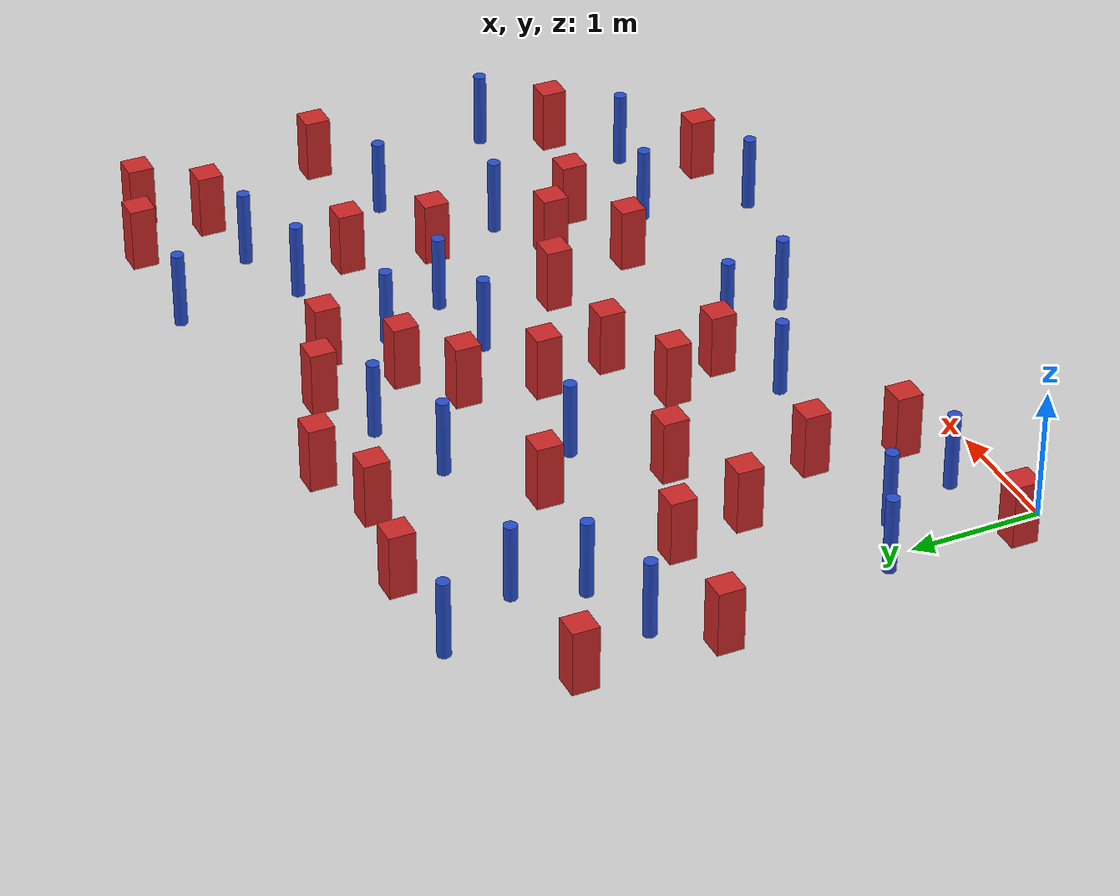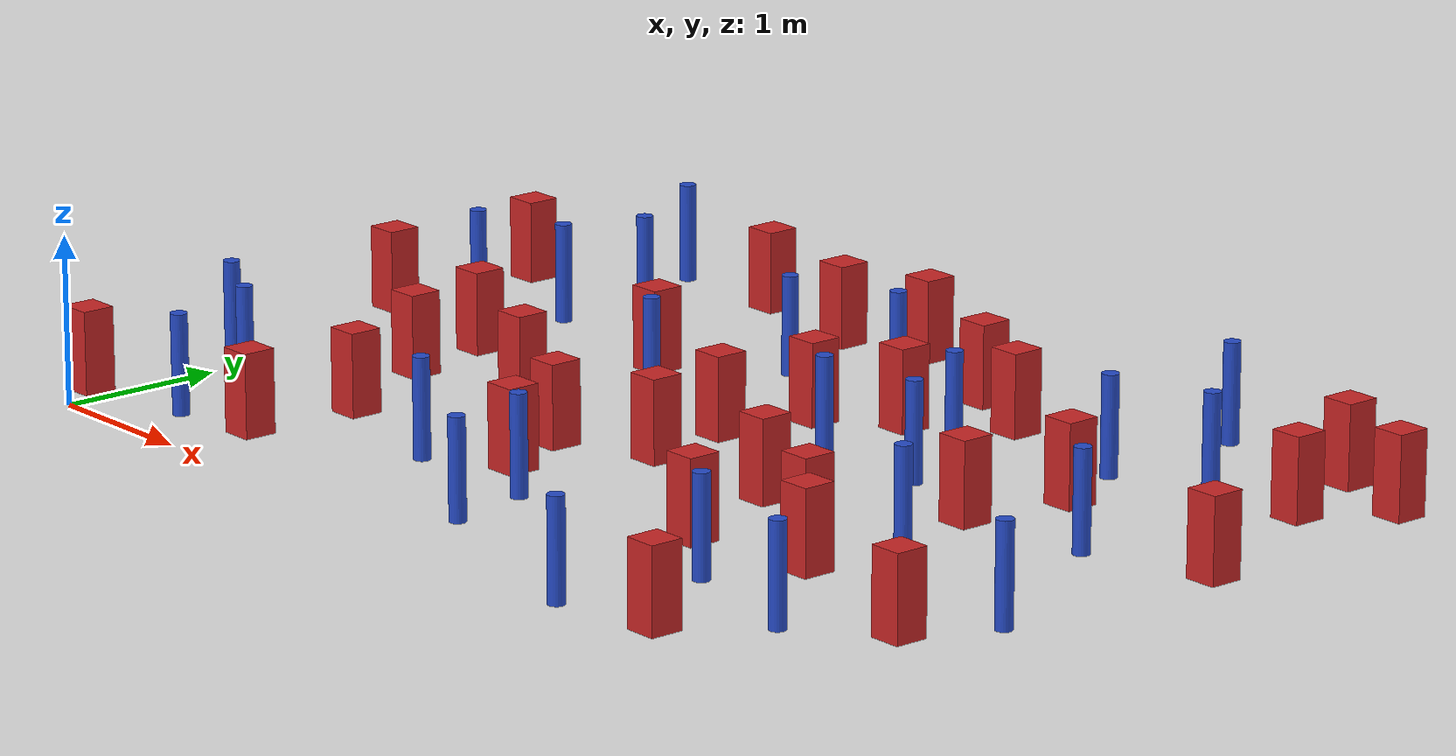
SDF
<sdf version="1.6">
 <model name="dense_40">
  <model name="square_post_obstacle8">
   <static>true</static>
   <pose>4.57625986904 1.62111247011 1.91545236811e-07 -7.35059704564e-06 1.12565212e-07 2.39332434364e-05</pose>
   <link name="link">
    <pose>0 0 0.25 0 -0 0</pose>
    <inertial>
     <mass>100</mass>
     <inertia>
      <ixx>0.166667</ixx>
      <ixy>0</ixy>
      <ixz>0</ixz>
      <iyy>0.166667</iyy>
      <iyz>0</iyz>
      <izz>0.166667</izz>
     </inertia>
    </inertial>
    <collision name="collision"><geometry><box><size>.2 .2 .5</size></box></geometry></collision>
    <visual name="visual">
     <geometry><box><size>.2 .2 .5</size></box></geometry>
     <material>
      <script><name>Gazebo/Red</name><uri>file://media/materials/scripts/gazebo.material</uri></script>
     </material>
    </visual>
   </link>
  </model>
  <model name="pole_obstacle11">
   <static>true</static>
   <pose>0.478664716121 3.2279638088 7.38925637345e-09 -8.471706928e-08 1.24976765089e-08 -1.74513093016e-07</pose>
   <link name="link">
    <pose>0 0 0.3 0 -0 0</pose>
    <inertial>
     <mass>1</mass>
     <inertia><ixx>0.145833</ixx><ixy>0</ixy><ixz>0</ixz><iyy>0.145833</iyy><iyz>0</iyz><izz>0.125</izz></inertia>
    </inertial>
    <collision name="collision">
     <geometry><cylinder><radius>0.05</radius><length>.6</length></cylinder></geometry>
    </collision>
    <visual name="visual">
     <geometry><cylinder><radius>0.05</radius><length>.6</length></cylinder></geometry>
     <material>
      <script><name>Gazebo/Blue</name><uri>file://media/materials/scripts/gazebo.material</uri></script>
     </material>
    </visual>
   </link>
  </model>
  <model name="square_post_obstacle22">
   <static>true</static>
   <pose>1.09951988133 0.476390049716 1.91545236811e-07 -7.35059704564e-06 1.12565212e-07 2.39332434364e-05</pose>
   <link name="link">
    <pose>0 0 0.25 0 -0 0</pose>
    <inertial>
     <mass>100</mass>
     <inertia>
      <ixx>0.166667</ixx>
      <ixy>0</ixy>
      <ixz>0</ixz>
      <iyy>0.166667</iyy>
      <iyz>0</iyz>
      <izz>0.166667</izz>
     </inertia>
    </inertial>
    <collision name="collision"><geometry><box><size>.2 .2 .5</size></box></geometry></collision>
    <visual name="visual">
     <geometry><box><size>.2 .2 .5</size></box></geometry>
     <material>
      <script><name>Gazebo/Red</name><uri>file://media/materials/scripts/gazebo.material</uri></script>
     </material>
    </visual>
   </link>
  </model>
  <model name="pole_obstacle14">
   <static>true</static>
   <pose>2.02225817843 2.63889635493 7.38925637345e-09 -8.47170692797e-08 1.24976764891e-08 -1.74513093027e-07</pose>
   <link name="link">
    <pose>0 0 0.3 0 -0 0</pose>
    <inertial>
     <mass>1</mass>
     <inertia><ixx>0.145833</ixx><ixy>0</ixy><ixz>0</ixz><iyy>0.145833</iyy><iyz>0</iyz><izz>0.125</izz></inertia>
    </inertial>
    <collision name="collision">
     <geometry><cylinder><radius>0.05</radius><length>.6</length></cylinder></geometry>
    </collision>
    <visual name="visual">
     <geometry><cylinder><radius>0.05</radius><length>.6</length></cylinder></geometry>
     <material>
      <script><name>Gazebo/Blue</name><uri>file://media/materials/scripts/gazebo.material</uri></script>
     </material>
    </visual>
   </link>
  </model>
  <model name="square_post_obstacle23">
   <static>true</static>
   <pose>4.18238607842 1.15388390437 1.91545236811e-07 -7.35059704564e-06 1.12565212e-07 2.39332434364e-05</pose>
   <link name="link">
    <pose>0 0 0.25 0 -0 0</pose>
    <inertial>
     <mass>100</mass>
     <inertia>
      <ixx>0.166667</ixx>
      <ixy>0</ixy>
      <ixz>0</ixz>
      <iyy>0.166667</iyy>
      <iyz>0</iyz>
      <izz>0.166667</izz>
     </inertia>
    </inertial>
    <collision name="collision"><geometry><box><size>.2 .2 .5</size></box></geometry></collision>
    <visual name="visual">
     <geometry><box><size>.2 .2 .5</size></box></geometry>
     <material>
      <script><name>Gazebo/Red</name><uri>file://media/materials/scripts/gazebo.material</uri></script>
     </material>
    </visual>
   </link>
  </model>
  <model name="pole_obstacle19">
   <static>true</static>
   <pose>2.18692887537 3.53944393992 7.38925637345e-09 -8.47170692798e-08 1.24976764939e-08 -1.74513093025e-07</pose>
   <link name="link">
    <pose>0 0 0.3 0 -0 0</pose>
    <inertial>
     <mass>1</mass>
     <inertia><ixx>0.145833</ixx><ixy>0</ixy><ixz>0</ixz><iyy>0.145833</iyy><iyz>0</iyz><izz>0.125</izz></inertia>
    </inertial>
    <collision name="collision">
     <geometry><cylinder><radius>0.05</radius><length>.6</length></cylinder></geometry>
    </collision>
    <visual name="visual">
     <geometry><cylinder><radius>0.05</radius><length>.6</length></cylinder></geometry>
     <material>
      <script><name>Gazebo/Blue</name><uri>file://media/materials/scripts/gazebo.material</uri></script>
     </material>
    </visual>
   </link>
  </model>
  <model name="pole_obstacle22">
   <static>true</static>
   <pose>4.7871799896 4.55580979346 7.38925637345e-09 -8.47170692796e-08 1.24976764786e-08 -1.74513093032e-07</pose>
   <link name="link">
    <pose>0 0 0.3 0 -0 0</pose>
    <inertial>
     <mass>1</mass>
     <inertia><ixx>0.145833</ixx><ixy>0</ixy><ixz>0</ixz><iyy>0.145833</iyy><iyz>0</iyz><izz>0.125</izz></inertia>
    </inertial>
    <collision name="collision">
     <geometry><cylinder><radius>0.05</radius><length>.6</length></cylinder></geometry>
    </collision>
    <visual name="visual">
     <geometry><cylinder><radius>0.05</radius><length>.6</length></cylinder></geometry>
     <material>
      <script><name>Gazebo/Blue</name><uri>file://media/materials/scripts/gazebo.material</uri></script>
     </material>
    </visual>
   </link>
  </model>
  <model name="pole_obstacle29">
   <static>true</static>
   <pose>4.54024770838 -0.0614393843138 7.38925637345e-09 -8.47170692799e-08 1.24976765036e-08 -1.7451309302e-07</pose>
   <link name="link">
    <pose>0 0 0.3 0 -0 0</pose>
    <inertial>
     <mass>1</mass>
     <inertia><ixx>0.145833</ixx><ixy>0</ixy><ixz>0</ixz><iyy>0.145833</iyy><iyz>0</iyz><izz>0.125</izz></inertia>
    </inertial>
    <collision name="collision">
     <geometry><cylinder><radius>0.05</radius><length>.6</length></cylinder></geometry>
    </collision>
    <visual name="visual">
     <geometry><cylinder><radius>0.05</radius><length>.6</length></cylinder></geometry>
     <material>
      <script><name>Gazebo/Blue</name><uri>file://media/materials/scripts/gazebo.material</uri></script>
     </material>
    </visual>
   </link>
  </model>
  <model name="pole_obstacle33">
   <static>true</static>
   <pose>0.650099446208 3.71073841236 7.38925637345e-09 -8.47170692799e-08 1.2497676509e-08 -1.74513093016e-07</pose>
   <link name="link">
    <pose>0 0 0.3 0 -0 0</pose>
    <inertial>
     <mass>1</mass>
     <inertia><ixx>0.145833</ixx><ixy>0</ixy><ixz>0</ixz><iyy>0.145833</iyy><iyz>0</iyz><izz>0.125</izz></inertia>
    </inertial>
    <collision name="collision">
     <geometry><cylinder><radius>0.05</radius><length>.6</length></cylinder></geometry>
    </collision>
    <visual name="visual">
     <geometry><cylinder><radius>0.05</radius><length>.6</length></cylinder></geometry>
     <material>
      <script><name>Gazebo/Blue</name><uri>file://media/materials/scripts/gazebo.material</uri></script>
     </material>
    </visual>
   </link>
  </model>
  <model name="square_post_obstacle37">
   <static>true</static>
   <pose>2.94550597644 1.91577347089 1.91545236811e-07 -7.35059704564e-06 1.12565212e-07 2.39332434364e-05</pose>
   <link name="link">
    <pose>0 0 0.25 0 -0 0</pose>
    <inertial>
     <mass>100</mass>
     <inertia>
      <ixx>0.166667</ixx>
      <ixy>0</ixy>
      <ixz>0</ixz>
      <iyy>0.166667</iyy>
      <iyz>0</iyz>
      <izz>0.166667</izz>
     </inertia>
    </inertial>
    <collision name="collision"><geometry><box><size>.2 .2 .5</size></box></geometry></collision>
    <visual name="visual">
     <geometry><box><size>.2 .2 .5</size></box></geometry>
     <material>
      <script><name>Gazebo/Red</name><uri>file://media/materials/scripts/gazebo.material</uri></script>
     </material>
    </visual>
   </link>
  </model>
  <model name="square_post_obstacle40">
   <static>true</static>
   <pose>1.16392120445 1.17354132471 1.91545236811e-07 -7.35059704564e-06 1.12565212e-07 2.39332434364e-05</pose>
   <link name="link">
    <pose>0 0 0.25 0 -0 0</pose>
    <inertial>
     <mass>100</mass>
     <inertia>
      <ixx>0.166667</ixx>
      <ixy>0</ixy>
      <ixz>0</ixz>
      <iyy>0.166667</iyy>
      <iyz>0</iyz>
      <izz>0.166667</izz>
     </inertia>
    </inertial>
    <collision name="collision"><geometry><box><size>.2 .2 .5</size></box></geometry></collision>
    <visual name="visual">
     <geometry><box><size>.2 .2 .5</size></box></geometry>
     <material>
      <script><name>Gazebo/Red</name><uri>file://media/materials/scripts/gazebo.material</uri></script>
     </material>
    </visual>
   </link>
  </model>
  <model name="square_post_obstacle41">
   <static>true</static>
   <pose>2.58108066992 1.194146074 1.91545236811e-07 -7.35059704564e-06 1.12565212e-07 2.39332434364e-05</pose>
   <link name="link">
    <pose>0 0 0.25 0 -0 0</pose>
    <inertial>
     <mass>100</mass>
     <inertia>
      <ixx>0.166667</ixx>
      <ixy>0</ixy>
      <ixz>0</ixz>
      <iyy>0.166667</iyy>
      <iyz>0</iyz>
      <izz>0.166667</izz>
     </inertia>
    </inertial>
    <collision name="collision"><geometry><box><size>.2 .2 .5</size></box></geometry></collision>
    <visual name="visual">
     <geometry><box><size>.2 .2 .5</size></box></geometry>
     <material>
      <script><name>Gazebo/Red</name><uri>file://media/materials/scripts/gazebo.material</uri></script>
     </material>
    </visual>
   </link>
  </model>
  <model name="square_post_obstacle43">
   <static>true</static>
   <pose>3.32716525385 4.02108744981 1.91545236811e-07 -7.35059704564e-06 1.12565212e-07 2.39332434364e-05</pose>
   <link name="link">
    <pose>0 0 0.25 0 -0 0</pose>
    <inertial>
     <mass>100</mass>
     <inertia>
      <ixx>0.166667</ixx>
      <ixy>0</ixy>
      <ixz>0</ixz>
      <iyy>0.166667</iyy>
      <iyz>0</iyz>
      <izz>0.166667</izz>
     </inertia>
    </inertial>
    <collision name="collision"><geometry><box><size>.2 .2 .5</size></box></geometry></collision>
    <visual name="visual">
     <geometry><box><size>.2 .2 .5</size></box></geometry>
     <material>
      <script><name>Gazebo/Red</name><uri>file://media/materials/scripts/gazebo.material</uri></script>
     </material>
    </visual>
   </link>
  </model>
  <model name="square_post_obstacle56">
   <static>true</static>
   <pose>0.630769645936 2.4777197629 1.91545236811e-07 -7.35059704564e-06 1.12565212e-07 2.39332434364e-05</pose>
   <link name="link">
    <pose>0 0 0.25 0 -0 0</pose>
    <inertial>
     <mass>100</mass>
     <inertia>
      <ixx>0.166667</ixx>
      <ixy>0</ixy>
      <ixz>0</ixz>
      <iyy>0.166667</iyy>
      <iyz>0</iyz>
      <izz>0.166667</izz>
     </inertia>
    </inertial>
    <collision name="collision"><geometry><box><size>.2 .2 .5</size></box></geometry></collision>
    <visual name="visual">
     <geometry><box><size>.2 .2 .5</size></box></geometry>
     <material>
      <script><name>Gazebo/Red</name><uri>file://media/materials/scripts/gazebo.material</uri></script>
     </material>
    </visual>
   </link>
  </model>
  <model name="square_post_obstacle58">
   <static>true</static>
   <pose>1.89835026861 4.19668472905 1.91545236811e-07 -7.35059704564e-06 1.12565212e-07 2.39332434364e-05</pose>
   <link name="link">
    <pose>0 0 0.25 0 -0 0</pose>
    <inertial>
     <mass>100</mass>
     <inertia>
      <ixx>0.166667</ixx>
      <ixy>0</ixy>
      <ixz>0</ixz>
      <iyy>0.166667</iyy>
      <iyz>0</iyz>
      <izz>0.166667</izz>
     </inertia>
    </inertial>
    <collision name="collision"><geometry><box><size>.2 .2 .5</size></box></geometry></collision>
    <visual name="visual">
     <geometry><box><size>.2 .2 .5</size></box></geometry>
     <material>
      <script><name>Gazebo/Red</name><uri>file://media/materials/scripts/gazebo.material</uri></script>
     </material>
    </visual>
   </link>
  </model>
  <model name="pole_obstacle58">
   <static>true</static>
   <pose>-0.0982627981683 3.03615198063 7.38925637345e-09 -8.471706928e-08 1.24976765098e-08 -1.74513093016e-07</pose>
   <link name="link">
    <pose>0 0 0.3 0 -0 0</pose>
    <inertial>
     <mass>1</mass>
     <inertia><ixx>0.145833</ixx><ixy>0</ixy><ixz>0</ixz><iyy>0.145833</iyy><iyz>0</iyz><izz>0.125</izz></inertia>
    </inertial>
    <collision name="collision">
     <geometry><cylinder><radius>0.05</radius><length>.6</length></cylinder></geometry>
    </collision>
    <visual name="visual">
     <geometry><cylinder><radius>0.05</radius><length>.6</length></cylinder></geometry>
     <material>
      <script><name>Gazebo/Blue</name><uri>file://media/materials/scripts/gazebo.material</uri></script>
     </material>
    </visual>
   </link>
  </model>
  <model name="square_post_obstacle75">
   <static>true</static>
   <pose>1.59171851901 3.03278778535 1.91545236811e-07 -7.35059704564e-06 1.12565212e-07 2.39332434364e-05</pose>
   <link name="link">
    <pose>0 0 0.25 0 -0 0</pose>
    <inertial>
     <mass>100</mass>
     <inertia>
      <ixx>0.166667</ixx>
      <ixy>0</ixy>
      <ixz>0</ixz>
      <iyy>0.166667</iyy>
      <iyz>0</iyz>
      <izz>0.166667</izz>
     </inertia>
    </inertial>
    <collision name="collision"><geometry><box><size>.2 .2 .5</size></box></geometry></collision>
    <visual name="visual">
     <geometry><box><size>.2 .2 .5</size></box></geometry>
     <material>
      <script><name>Gazebo/Red</name><uri>file://media/materials/scripts/gazebo.material</uri></script>
     </material>
    </visual>
   </link>
  </model>
  <model name="square_post_obstacle77">
   <static>true</static>
   <pose>6.08131051045 0.943509550159 1.91545236811e-07 -7.35059704564e-06 1.12565212e-07 2.39332434364e-05</pose>
   <link name="link">
    <pose>0 0 0.25 0 -0 0</pose>
    <inertial>
     <mass>100</mass>
     <inertia>
      <ixx>0.166667</ixx>
      <ixy>0</ixy>
      <ixz>0</ixz>
      <iyy>0.166667</iyy>
      <iyz>0</iyz>
      <izz>0.166667</izz>
     </inertia>
    </inertial>
    <collision name="collision"><geometry><box><size>.2 .2 .5</size></box></geometry></collision>
    <visual name="visual">
     <geometry><box><size>.2 .2 .5</size></box></geometry>
     <material>
      <script><name>Gazebo/Red</name><uri>file://media/materials/scripts/gazebo.material</uri></script>
     </material>
    </visual>
   </link>
  </model>
  <model name="square_post_obstacle80">
   <static>true</static>
   <pose>5.1858405652 0.0668220412617 1.91545236811e-07 -7.35059704564e-06 1.12565212e-07 2.39332434364e-05</pose>
   <link name="link">
    <pose>0 0 0.25 0 -0 0</pose>
    <inertial>
     <mass>100</mass>
     <inertia>
      <ixx>0.166667</ixx>
      <ixy>0</ixy>
      <ixz>0</ixz>
      <iyy>0.166667</iyy>
      <iyz>0</iyz>
      <izz>0.166667</izz>
     </inertia>
    </inertial>
    <collision name="collision"><geometry><box><size>.2 .2 .5</size></box></geometry></collision>
    <visual name="visual">
     <geometry><box><size>.2 .2 .5</size></box></geometry>
     <material>
      <script><name>Gazebo/Red</name><uri>file://media/materials/scripts/gazebo.material</uri></script>
     </material>
    </visual>
   </link>
  </model>
  <model name="square_post_obstacle84">
   <static>true</static>
   <pose>5.98140574798 3.893725026 1.91545236811e-07 -7.35059704564e-06 1.12565212e-07 2.39332434364e-05</pose>
   <link name="link">
    <pose>0 0 0.25 0 -0 0</pose>
    <inertial>
     <mass>100</mass>
     <inertia>
      <ixx>0.166667</ixx>
      <ixy>0</ixy>
      <ixz>0</ixz>
      <iyy>0.166667</iyy>
      <iyz>0</iyz>
      <izz>0.166667</izz>
     </inertia>
    </inertial>
    <collision name="collision"><geometry><box><size>.2 .2 .5</size></box></geometry></collision>
    <visual name="visual">
     <geometry><box><size>.2 .2 .5</size></box></geometry>
     <material>
      <script><name>Gazebo/Red</name><uri>file://media/materials/scripts/gazebo.material</uri></script>
     </material>
    </visual>
   </link>
  </model>
  <model name="square_post_obstacle86">
   <static>true</static>
   <pose>5.01514037477 3.12262437877 1.91545236811e-07 -7.35059704564e-06 1.12565212e-07 2.39332434364e-05</pose>
   <link name="link">
    <pose>0 0 0.25 0 -0 0</pose>
    <inertial>
     <mass>100</mass>
     <inertia>
      <ixx>0.166667</ixx>
      <ixy>0</ixy>
      <ixz>0</ixz>
      <iyy>0.166667</iyy>
      <iyz>0</iyz>
      <izz>0.166667</izz>
     </inertia>
    </inertial>
    <collision name="collision"><geometry><box><size>.2 .2 .5</size></box></geometry></collision>
    <visual name="visual">
     <geometry><box><size>.2 .2 .5</size></box></geometry>
     <material>
      <script><name>Gazebo/Red</name><uri>file://media/materials/scripts/gazebo.material</uri></script>
     </material>
    </visual>
   </link>
  </model>
  <model name="square_post_obstacle89">
   <static>true</static>
   <pose>6.43509051932 2.82899132361 1.91545236811e-07 -7.35059704564e-06 1.12565212e-07 2.39332434364e-05</pose>
   <link name="link">
    <pose>0 0 0.25 0 -0 0</pose>
    <inertial>
     <mass>100</mass>
     <inertia>
      <ixx>0.166667</ixx>
      <ixy>0</ixy>
      <ixz>0</ixz>
      <iyy>0.166667</iyy>
      <iyz>0</iyz>
      <izz>0.166667</izz>
     </inertia>
    </inertial>
    <collision name="collision"><geometry><box><size>.2 .2 .5</size></box></geometry></collision>
    <visual name="visual">
     <geometry><box><size>.2 .2 .5</size></box></geometry>
     <material>
      <script><name>Gazebo/Red</name><uri>file://media/materials/scripts/gazebo.material</uri></script>
     </material>
    </visual>
   </link>
  </model>
  <model name="pole_obstacle105">
   <static>true</static>
   <pose>0.265290542335 4.36334637209 7.38925637345e-09 -8.47170692799e-08 1.24976765101e-08 -1.74513093014e-07</pose>
   <link name="link">
    <pose>0 0 0.3 0 -0 0</pose>
    <inertial>
     <mass>1</mass>
     <inertia><ixx>0.145833</ixx><ixy>0</ixy><ixz>0</ixz><iyy>0.145833</iyy><iyz>0</iyz><izz>0.125</izz></inertia>
    </inertial>
    <collision name="collision">
     <geometry><cylinder><radius>0.05</radius><length>.6</length></cylinder></geometry>
    </collision>
    <visual name="visual">
     <geometry><cylinder><radius>0.05</radius><length>.6</length></cylinder></geometry>
     <material>
      <script><name>Gazebo/Blue</name><uri>file://media/materials/scripts/gazebo.material</uri></script>
     </material>
    </visual>
   </link>
  </model>
  <model name="square_post_obstacle94">
   <static>true</static>
   <pose>2.83821839437 2.46980169838 1.91545236811e-07 -7.35059704564e-06 1.12565212e-07 2.39332434364e-05</pose>
   <link name="link">
    <pose>0 0 0.25 0 -0 0</pose>
    <inertial>
     <mass>100</mass>
     <inertia>
      <ixx>0.166667</ixx>
      <ixy>0</ixy>
      <ixz>0</ixz>
      <iyy>0.166667</iyy>
      <iyz>0</iyz>
      <izz>0.166667</izz>
     </inertia>
    </inertial>
    <collision name="collision"><geometry><box><size>.2 .2 .5</size></box></geometry></collision>
    <visual name="visual">
     <geometry><box><size>.2 .2 .5</size></box></geometry>
     <material>
      <script><name>Gazebo/Red</name><uri>file://media/materials/scripts/gazebo.material</uri></script>
     </material>
    </visual>
   </link>
  </model>
  <model name="square_post_obstacle95">
   <static>true</static>
   <pose>-0.386877009004 3.68334791112 1.91545236811e-07 -7.35059704564e-06 1.12565212e-07 2.39332434364e-05</pose>
   <link name="link">
    <pose>0 0 0.25 0 -0 0</pose>
    <inertial>
     <mass>100</mass>
     <inertia>
      <ixx>0.166667</ixx>
      <ixy>0</ixy>
      <ixz>0</ixz>
      <iyy>0.166667</iyy>
      <iyz>0</iyz>
      <izz>0.166667</izz>
     </inertia>
    </inertial>
    <collision name="collision"><geometry><box><size>.2 .2 .5</size></box></geometry></collision>
    <visual name="visual">
     <geometry><box><size>.2 .2 .5</size></box></geometry>
     <material>
      <script><name>Gazebo/Red</name><uri>file://media/materials/scripts/gazebo.material</uri></script>
     </material>
    </visual>
   </link>
  </model>
  <model name="pole_obstacle108">
   <static>true</static>
   <pose>2.83360505329 3.79996117749 7.38925637345e-09 -8.47170692798e-08 1.24976764939e-08 -1.74513093025e-07</pose>
   <link name="link">
    <pose>0 0 0.3 0 -0 0</pose>
    <inertial>
     <mass>1</mass>
     <inertia><ixx>0.145833</ixx><ixy>0</ixy><ixz>0</ixz><iyy>0.145833</iyy><iyz>0</iyz><izz>0.125</izz></inertia>
    </inertial>
    <collision name="collision">
     <geometry><cylinder><radius>0.05</radius><length>.6</length></cylinder></geometry>
    </collision>
    <visual name="visual">
     <geometry><cylinder><radius>0.05</radius><length>.6</length></cylinder></geometry>
     <material>
      <script><name>Gazebo/Blue</name><uri>file://media/materials/scripts/gazebo.material</uri></script>
     </material>
    </visual>
   </link>
  </model>
  <model name="square_post_obstacle96">
   <static>true</static>
   <pose>3.88859082214 1.90570112723 1.91545236811e-07 -7.35059704564e-06 1.12565212e-07 2.39332434364e-05</pose>
   <link name="link">
    <pose>0 0 0.25 0 -0 0</pose>
    <inertial>
     <mass>100</mass>
     <inertia>
      <ixx>0.166667</ixx>
      <ixy>0</ixy>
      <ixz>0</ixz>
      <iyy>0.166667</iyy>
      <iyz>0</iyz>
      <izz>0.166667</izz>
     </inertia>
    </inertial>
    <collision name="collision"><geometry><box><size>.2 .2 .5</size></box></geometry></collision>
    <visual name="visual">
     <geometry><box><size>.2 .2 .5</size></box></geometry>
     <material>
      <script><name>Gazebo/Red</name><uri>file://media/materials/scripts/gazebo.material</uri></script>
     </material>
    </visual>
   </link>
  </model>
  <model name="pole_obstacle112">
   <static>true</static>
   <pose>5.58200575427 0.555739816635 7.38925637345e-09 -8.47170692799e-08 1.24976765038e-08 -1.74513093018e-07</pose>
   <link name="link">
    <pose>0 0 0.3 0 -0 0</pose>
    <inertial>
     <mass>1</mass>
     <inertia><ixx>0.145833</ixx><ixy>0</ixy><ixz>0</ixz><iyy>0.145833</iyy><iyz>0</iyz><izz>0.125</izz></inertia>
    </inertial>
    <collision name="collision">
     <geometry><cylinder><radius>0.05</radius><length>.6</length></cylinder></geometry>
    </collision>
    <visual name="visual">
     <geometry><cylinder><radius>0.05</radius><length>.6</length></cylinder></geometry>
     <material>
      <script><name>Gazebo/Blue</name><uri>file://media/materials/scripts/gazebo.material</uri></script>
     </material>
    </visual>
   </link>
  </model>
  <model name="pole_obstacle118">
   <static>true</static>
   <pose>4.19427763919 2.71586037174 7.38925637345e-09 -8.47170692798e-08 1.24976764937e-08 -1.74513093023e-07</pose>
   <link name="link">
    <pose>0 0 0.3 0 -0 0</pose>
    <inertial>
     <mass>1</mass>
     <inertia><ixx>0.145833</ixx><ixy>0</ixy><ixz>0</ixz><iyy>0.145833</iyy><iyz>0</iyz><izz>0.125</izz></inertia>
    </inertial>
    <collision name="collision">
     <geometry><cylinder><radius>0.05</radius><length>.6</length></cylinder></geometry>
    </collision>
    <visual name="visual">
     <geometry><cylinder><radius>0.05</radius><length>.6</length></cylinder></geometry>
     <material>
      <script><name>Gazebo/Blue</name><uri>file://media/materials/scripts/gazebo.material</uri></script>
     </material>
    </visual>
   </link>
  </model>
  <model name="pole_obstacle121">
   <static>true</static>
   <pose>4.80119999925 3.61337971594 7.38925637345e-09 -8.47170692798e-08 1.24976764937e-08 -1.74513093023e-07</pose>
   <link name="link">
    <pose>0 0 0.3 0 -0 0</pose>
    <inertial>
     <mass>1</mass>
     <inertia><ixx>0.145833</ixx><ixy>0</ixy><ixz>0</ixz><iyy>0.145833</iyy><iyz>0</iyz><izz>0.125</izz></inertia>
    </inertial>
    <collision name="collision">
     <geometry><cylinder><radius>0.05</radius><length>.6</length></cylinder></geometry>
    </collision>
    <visual name="visual">
     <geometry><cylinder><radius>0.05</radius><length>.6</length></cylinder></geometry>
     <material>
      <script><name>Gazebo/Blue</name><uri>file://media/materials/scripts/gazebo.material</uri></script>
     </material>
    </visual>
   </link>
  </model>
  <model name="pole_obstacle125">
   <static>true</static>
   <pose>5.04151353593 1.88866399728 7.38925637345e-09 -8.471706928e-08 1.24976765134e-08 -1.74513093015e-07</pose>
   <link name="link">
    <pose>0 0 0.3 0 -0 0</pose>
    <inertial>
     <mass>1</mass>
     <inertia><ixx>0.145833</ixx><ixy>0</ixy><ixz>0</ixz><iyy>0.145833</iyy><iyz>0</iyz><izz>0.125</izz></inertia>
    </inertial>
    <collision name="collision">
     <geometry><cylinder><radius>0.05</radius><length>.6</length></cylinder></geometry>
    </collision>
    <visual name="visual">
     <geometry><cylinder><radius>0.05</radius><length>.6</length></cylinder></geometry>
     <material>
      <script><name>Gazebo/Blue</name><uri>file://media/materials/scripts/gazebo.material</uri></script>
     </material>
    </visual>
   </link>
  </model>
  <model name="pole_obstacle129">
   <static>true</static>
   <pose>-0.134782625108 1.24973056904 7.38925637345e-09 -8.47170692799e-08 1.24976765103e-08 -1.74513093015e-07</pose>
   <link name="link">
    <pose>0 0 0.3 0 -0 0</pose>
    <inertial>
     <mass>1</mass>
     <inertia><ixx>0.145833</ixx><ixy>0</ixy><ixz>0</ixz><iyy>0.145833</iyy><iyz>0</iyz><izz>0.125</izz></inertia>
    </inertial>
    <collision name="collision">
     <geometry><cylinder><radius>0.05</radius><length>.6</length></cylinder></geometry>
    </collision>
    <visual name="visual">
     <geometry><cylinder><radius>0.05</radius><length>.6</length></cylinder></geometry>
     <material>
      <script><name>Gazebo/Blue</name><uri>file://media/materials/scripts/gazebo.material</uri></script>
     </material>
    </visual>
   </link>
  </model>
  <model name="square_post_obstacle116">
   <static>true</static>
   <pose>3.86397649243 3.77519367447 1.91545236811e-07 -7.35059704564e-06 1.12565212e-07 2.39332434364e-05</pose>
   <link name="link">
    <pose>0 0 0.25 0 -0 0</pose>
    <inertial>
     <mass>100</mass>
     <inertia>
      <ixx>0.166667</ixx>
      <ixy>0</ixy>
      <ixz>0</ixz>
      <iyy>0.166667</iyy>
      <iyz>0</iyz>
      <izz>0.166667</izz>
     </inertia>
    </inertial>
    <collision name="collision"><geometry><box><size>.2 .2 .5</size></box></geometry></collision>
    <visual name="visual">
     <geometry><box><size>.2 .2 .5</size></box></geometry>
     <material>
      <script><name>Gazebo/Red</name><uri>file://media/materials/scripts/gazebo.material</uri></script>
     </material>
    </visual>
   </link>
  </model>
  <model name="square_post_obstacle142">
   <static>true</static>
   <pose>-0.404198262864 2.63922497113 1.91545236811e-07 -7.35059704564e-06 1.12565212e-07 2.39332434364e-05</pose>
   <link name="link">
    <pose>0 0 0.25 0 -0 0</pose>
    <inertial>
     <mass>100</mass>
     <inertia>
      <ixx>0.166667</ixx>
      <ixy>0</ixy>
      <ixz>0</ixz>
      <iyy>0.166667</iyy>
      <iyz>0</iyz>
      <izz>0.166667</izz>
     </inertia>
    </inertial>
    <collision name="collision"><geometry><box><size>.2 .2 .5</size></box></geometry></collision>
    <visual name="visual">
     <geometry><box><size>.2 .2 .5</size></box></geometry>
     <material>
      <script><name>Gazebo/Red</name><uri>file://media/materials/scripts/gazebo.material</uri></script>
     </material>
    </visual>
   </link>
  </model>
  <model name="pole_obstacle156">
   <static>true</static>
   <pose>0.340652775351 0.994644855966 7.38925637345e-09 -8.471706928e-08 1.24976765089e-08 -1.74513093015e-07</pose>
   <link name="link">
    <pose>0 0 0.3 0 -0 0</pose>
    <inertial>
     <mass>1</mass>
     <inertia><ixx>0.145833</ixx><ixy>0</ixy><ixz>0</ixz><iyy>0.145833</iyy><iyz>0</iyz><izz>0.125</izz></inertia>
    </inertial>
    <collision name="collision">
     <geometry><cylinder><radius>0.05</radius><length>.6</length></cylinder></geometry>
    </collision>
    <visual name="visual">
     <geometry><cylinder><radius>0.05</radius><length>.6</length></cylinder></geometry>
     <material>
      <script><name>Gazebo/Blue</name><uri>file://media/materials/scripts/gazebo.material</uri></script>
     </material>
    </visual>
   </link>
  </model>
  <model name="square_post_obstacle151">
   <static>true</static>
   <pose>0.768713747366 1.90101707484 1.91545236811e-07 -7.35059704564e-06 1.12565212e-07 2.39332434364e-05</pose>
   <link name="link">
    <pose>0 0 0.25 0 -0 0</pose>
    <inertial>
     <mass>100</mass>
     <inertia>
      <ixx>0.166667</ixx>
      <ixy>0</ixy>
      <ixz>0</ixz>
      <iyy>0.166667</iyy>
      <iyz>0</iyz>
      <izz>0.166667</izz>
     </inertia>
    </inertial>
    <collision name="collision"><geometry><box><size>.2 .2 .5</size></box></geometry></collision>
    <visual name="visual">
     <geometry><box><size>.2 .2 .5</size></box></geometry>
     <material>
      <script><name>Gazebo/Red</name><uri>file://media/materials/scripts/gazebo.material</uri></script>
     </material>
    </visual>
   </link>
  </model>
  <model name="pole_obstacle159">
   <static>true</static>
   <pose>5.40470069466 3.80455957406 7.38925637345e-09 -8.47170692798e-08 1.24976764937e-08 -1.74513093023e-07</pose>
   <link name="link">
    <pose>0 0 0.3 0 -0 0</pose>
    <inertial>
     <mass>1</mass>
     <inertia><ixx>0.145833</ixx><ixy>0</ixy><ixz>0</ixz><iyy>0.145833</iyy><iyz>0</iyz><izz>0.125</izz></inertia>
    </inertial>
    <collision name="collision">
     <geometry><cylinder><radius>0.05</radius><length>.6</length></cylinder></geometry>
    </collision>
    <visual name="visual">
     <geometry><cylinder><radius>0.05</radius><length>.6</length></cylinder></geometry>
     <material>
      <script><name>Gazebo/Blue</name><uri>file://media/materials/scripts/gazebo.material</uri></script>
     </material>
    </visual>
   </link>
  </model>
  <model name="pole_obstacle160">
   <static>true</static>
   <pose>2.99895061726 0.905457821867 7.38925637345e-09 -8.471706928e-08 1.24976765177e-08 -1.74513093012e-07</pose>
   <link name="link">
    <pose>0 0 0.3 0 -0 0</pose>
    <inertial>
     <mass>1</mass>
     <inertia><ixx>0.145833</ixx><ixy>0</ixy><ixz>0</ixz><iyy>0.145833</iyy><iyz>0</iyz><izz>0.125</izz></inertia>
    </inertial>
    <collision name="collision">
     <geometry><cylinder><radius>0.05</radius><length>.6</length></cylinder></geometry>
    </collision>
    <visual name="visual">
     <geometry><cylinder><radius>0.05</radius><length>.6</length></cylinder></geometry>
     <material>
      <script><name>Gazebo/Blue</name><uri>file://media/materials/scripts/gazebo.material</uri></script>
     </material>
    </visual>
   </link>
  </model>
  <model name="square_post_obstacle154">
   <static>true</static>
   <pose>1.06400520829 4.35960703123 1.91545236811e-07 -7.35059704564e-06 1.12565212e-07 2.39332434364e-05</pose>
   <link name="link">
    <pose>0 0 0.25 0 -0 0</pose>
    <inertial>
     <mass>100</mass>
     <inertia>
      <ixx>0.166667</ixx>
      <ixy>0</ixy>
      <ixz>0</ixz>
      <iyy>0.166667</iyy>
      <iyz>0</iyz>
      <izz>0.166667</izz>
     </inertia>
    </inertial>
    <collision name="collision"><geometry><box><size>.2 .2 .5</size></box></geometry></collision>
    <visual name="visual">
     <geometry><box><size>.2 .2 .5</size></box></geometry>
     <material>
      <script><name>Gazebo/Red</name><uri>file://media/materials/scripts/gazebo.material</uri></script>
     </material>
    </visual>
   </link>
  </model>
  <model name="pole_obstacle164">
   <static>true</static>
   <pose>5.68261088641 2.58560989011 7.38925637345e-09 -8.47170692798e-08 1.24976764937e-08 -1.74513093023e-07</pose>
   <link name="link">
    <pose>0 0 0.3 0 -0 0</pose>
    <inertial>
     <mass>1</mass>
     <inertia><ixx>0.145833</ixx><ixy>0</ixy><ixz>0</ixz><iyy>0.145833</iyy><iyz>0</iyz><izz>0.125</izz></inertia>
    </inertial>
    <collision name="collision">
     <geometry><cylinder><radius>0.05</radius><length>.6</length></cylinder></geometry>
    </collision>
    <visual name="visual">
     <geometry><cylinder><radius>0.05</radius><length>.6</length></cylinder></geometry>
     <material>
      <script><name>Gazebo/Blue</name><uri>file://media/materials/scripts/gazebo.material</uri></script>
     </material>
    </visual>
   </link>
  </model>
  <model name="pole_obstacle166">
   <static>true</static>
   <pose>3.92668712824 3.2502834093 7.38925637345e-09 -8.47170692798e-08 1.24976764939e-08 -1.74513093025e-07</pose>
   <link name="link">
    <pose>0 0 0.3 0 -0 0</pose>
    <inertial>
     <mass>1</mass>
     <inertia><ixx>0.145833</ixx><ixy>0</ixy><ixz>0</ixz><iyy>0.145833</iyy><iyz>0</iyz><izz>0.125</izz></inertia>
    </inertial>
    <collision name="collision">
     <geometry><cylinder><radius>0.05</radius><length>.6</length></cylinder></geometry>
    </collision>
    <visual name="visual">
     <geometry><cylinder><radius>0.05</radius><length>.6</length></cylinder></geometry>
     <material>
      <script><name>Gazebo/Blue</name><uri>file://media/materials/scripts/gazebo.material</uri></script>
     </material>
    </visual>
   </link>
  </model>
  <model name="square_post_obstacle159">
   <static>true</static>
   <pose>2.97203813109 3.04613225984 1.91545236811e-07 -7.35059704564e-06 1.12565212e-07 2.39332434364e-05</pose>
   <link name="link">
    <pose>0 0 0.25 0 -0 0</pose>
    <inertial>
     <mass>100</mass>
     <inertia>
      <ixx>0.166667</ixx>
      <ixy>0</ixy>
      <ixz>0</ixz>
      <iyy>0.166667</iyy>
      <iyz>0</iyz>
      <izz>0.166667</izz>
     </inertia>
    </inertial>
    <collision name="collision"><geometry><box><size>.2 .2 .5</size></box></geometry></collision>
    <visual name="visual">
     <geometry><box><size>.2 .2 .5</size></box></geometry>
     <material>
      <script><name>Gazebo/Red</name><uri>file://media/materials/scripts/gazebo.material</uri></script>
     </material>
    </visual>
   </link>
  </model>
  <model name="square_post_obstacle161">
   <static>true</static>
   <pose>2.36531829054 1.66253692175 1.91545236811e-07 -7.35059704564e-06 1.12565212e-07 2.39332434364e-05</pose>
   <link name="link">
    <pose>0 0 0.25 0 -0 0</pose>
    <inertial>
     <mass>100</mass>
     <inertia>
      <ixx>0.166667</ixx>
      <ixy>0</ixy>
      <ixz>0</ixz>
      <iyy>0.166667</iyy>
      <iyz>0</iyz>
      <izz>0.166667</izz>
     </inertia>
    </inertial>
    <collision name="collision"><geometry><box><size>.2 .2 .5</size></box></geometry></collision>
    <visual name="visual">
     <geometry><box><size>.2 .2 .5</size></box></geometry>
     <material>
      <script><name>Gazebo/Red</name><uri>file://media/materials/scripts/gazebo.material</uri></script>
     </material>
    </visual>
   </link>
  </model>
  <model name="square_post_obstacle168">
   <static>true</static>
   <pose>5.73835127942 4.52943031121 1.91545236811e-07 -7.35059704564e-06 1.12565212e-07 2.39332434364e-05</pose>
   <link name="link">
    <pose>0 0 0.25 0 -0 0</pose>
    <inertial>
     <mass>100</mass>
     <inertia>
      <ixx>0.166667</ixx>
      <ixy>0</ixy>
      <ixz>0</ixz>
      <iyy>0.166667</iyy>
      <iyz>0</iyz>
      <izz>0.166667</izz>
     </inertia>
    </inertial>
    <collision name="collision"><geometry><box><size>.2 .2 .5</size></box></geometry></collision>
    <visual name="visual">
     <geometry><box><size>.2 .2 .5</size></box></geometry>
     <material>
      <script><name>Gazebo/Red</name><uri>file://media/materials/scripts/gazebo.material</uri></script>
     </material>
    </visual>
   </link>
  </model>
  <model name="pole_obstacle181">
   <static>true</static>
   <pose>6.32972952743 1.44191209893 7.38925637345e-09 -8.471706928e-08 1.24976765134e-08 -1.74513093015e-07</pose>
   <link name="link">
    <pose>0 0 0.3 0 -0 0</pose>
    <inertial>
     <mass>1</mass>
     <inertia><ixx>0.145833</ixx><ixy>0</ixy><ixz>0</ixz><iyy>0.145833</iyy><iyz>0</iyz><izz>0.125</izz></inertia>
    </inertial>
    <collision name="collision">
     <geometry><cylinder><radius>0.05</radius><length>.6</length></cylinder></geometry>
    </collision>
    <visual name="visual">
     <geometry><cylinder><radius>0.05</radius><length>.6</length></cylinder></geometry>
     <material>
      <script><name>Gazebo/Blue</name><uri>file://media/materials/scripts/gazebo.material</uri></script>
     </material>
    </visual>
   </link>
  </model>
  <model name="square_post_obstacle177">
   <static>true</static>
   <pose>-0.170901513564 0.266442490915 1.91545236811e-07 -7.35059704564e-06 1.12565212e-07 2.39332434364e-05</pose>
   <link name="link">
    <pose>0 0 0.25 0 -0 0</pose>
    <inertial>
     <mass>100</mass>
     <inertia>
      <ixx>0.166667</ixx>
      <ixy>0</ixy>
      <ixz>0</ixz>
      <iyy>0.166667</iyy>
      <iyz>0</iyz>
      <izz>0.166667</izz>
     </inertia>
    </inertial>
    <collision name="collision"><geometry><box><size>.2 .2 .5</size></box></geometry></collision>
    <visual name="visual">
     <geometry><box><size>.2 .2 .5</size></box></geometry>
     <material>
      <script><name>Gazebo/Red</name><uri>file://media/materials/scripts/gazebo.material</uri></script>
     </material>
    </visual>
   </link>
  </model>
  <model name="square_post_obstacle183">
   <static>true</static>
   <pose>6.30971255837 4.33963331469 1.91545236811e-07 -7.35059704564e-06 1.12565212e-07 2.39332434364e-05</pose>
   <link name="link">
    <pose>0 0 0.25 0 -0 0</pose>
    <inertial>
     <mass>100</mass>
     <inertia>
      <ixx>0.166667</ixx>
      <ixy>0</ixy>
      <ixz>0</ixz>
      <iyy>0.166667</iyy>
      <iyz>0</iyz>
      <izz>0.166667</izz>
     </inertia>
    </inertial>
    <collision name="collision"><geometry><box><size>.2 .2 .5</size></box></geometry></collision>
    <visual name="visual">
     <geometry><box><size>.2 .2 .5</size></box></geometry>
     <material>
      <script><name>Gazebo/Red</name><uri>file://media/materials/scripts/gazebo.material</uri></script>
     </material>
    </visual>
   </link>
  </model>
  <model name="square_post_obstacle184">
   <static>true</static>
   <pose>1.50473408871 2.10762487836 1.91545236811e-07 -7.35059704564e-06 1.12565212e-07 2.39332434364e-05</pose>
   <link name="link">
    <pose>0 0 0.25 0 -0 0</pose>
    <inertial>
     <mass>100</mass>
     <inertia>
      <ixx>0.166667</ixx>
      <ixy>0</ixy>
      <ixz>0</ixz>
      <iyy>0.166667</iyy>
      <iyz>0</iyz>
      <izz>0.166667</izz>
     </inertia>
    </inertial>
    <collision name="collision"><geometry><box><size>.2 .2 .5</size></box></geometry></collision>
    <visual name="visual">
     <geometry><box><size>.2 .2 .5</size></box></geometry>
     <material>
      <script><name>Gazebo/Red</name><uri>file://media/materials/scripts/gazebo.material</uri></script>
     </material>
    </visual>
   </link>
  </model>
  <model name="pole_obstacle188">
   <static>true</static>
   <pose>4.72218621777 0.763344298412 7.38925637345e-09 -8.47170692799e-08 1.24976765038e-08 -1.74513093018e-07</pose>
   <link name="link">
    <pose>0 0 0.3 0 -0 0</pose>
    <inertial>
     <mass>1</mass>
     <inertia><ixx>0.145833</ixx><ixy>0</ixy><ixz>0</ixz><iyy>0.145833</iyy><iyz>0</iyz><izz>0.125</izz></inertia>
    </inertial>
    <collision name="collision">
     <geometry><cylinder><radius>0.05</radius><length>.6</length></cylinder></geometry>
    </collision>
    <visual name="visual">
     <geometry><cylinder><radius>0.05</radius><length>.6</length></cylinder></geometry>
     <material>
      <script><name>Gazebo/Blue</name><uri>file://media/materials/scripts/gazebo.material</uri></script>
     </material>
    </visual>
   </link>
  </model>
  <model name="pole_obstacle190">
   <static>true</static>
   <pose>0.561067290179 0.381828024054 7.38925637345e-09 -8.471706928e-08 1.24976765108e-08 -1.74513093015e-07</pose>
   <link name="link">
    <pose>0 0 0.3 0 -0 0</pose>
    <inertial>
     <mass>1</mass>
     <inertia><ixx>0.145833</ixx><ixy>0</ixy><ixz>0</ixz><iyy>0.145833</iyy><iyz>0</iyz><izz>0.125</izz></inertia>
    </inertial>
    <collision name="collision">
     <geometry><cylinder><radius>0.05</radius><length>.6</length></cylinder></geometry>
    </collision>
    <visual name="visual">
     <geometry><cylinder><radius>0.05</radius><length>.6</length></cylinder></geometry>
     <material>
      <script><name>Gazebo/Blue</name><uri>file://media/materials/scripts/gazebo.material</uri></script>
     </material>
    </visual>
   </link>
  </model>
  <model name="square_post_obstacle209">
   <static>true</static>
   <pose>4.9668063244 1.2840227589 1.91545236811e-07 -7.35059704564e-06 1.12565212e-07 2.39332434364e-05</pose>
   <link name="link">
    <pose>0 0 0.25 0 -0 0</pose>
    <inertial>
     <mass>100</mass>
     <inertia>
      <ixx>0.166667</ixx>
      <ixy>0</ixy>
      <ixz>0</ixz>
      <iyy>0.166667</iyy>
      <iyz>0</iyz>
      <izz>0.166667</izz>
     </inertia>
    </inertial>
    <collision name="collision"><geometry><box><size>.2 .2 .5</size></box></geometry></collision>
    <visual name="visual">
     <geometry><box><size>.2 .2 .5</size></box></geometry>
     <material>
      <script><name>Gazebo/Red</name><uri>file://media/materials/scripts/gazebo.material</uri></script>
     </material>
    </visual>
   </link>
  </model>
  <model name="pole_obstacle201">
   <static>true</static>
   <pose>3.1193608239 0.388688609929 7.38925637345e-09 -8.471706928e-08 1.24976765172e-08 -1.74513093013e-07</pose>
   <link name="link">
    <pose>0 0 0.3 0 -0 0</pose>
    <inertial>
     <mass>1</mass>
     <inertia><ixx>0.145833</ixx><ixy>0</ixy><ixz>0</ixz><iyy>0.145833</iyy><iyz>0</iyz><izz>0.125</izz></inertia>
    </inertial>
    <collision name="collision">
     <geometry><cylinder><radius>0.05</radius><length>.6</length></cylinder></geometry>
    </collision>
    <visual name="visual">
     <geometry><cylinder><radius>0.05</radius><length>.6</length></cylinder></geometry>
     <material>
      <script><name>Gazebo/Blue</name><uri>file://media/materials/scripts/gazebo.material</uri></script>
     </material>
    </visual>
   </link>
  </model>
  <model name="pole_obstacle215">
   <static>true</static>
   <pose>3.53191455656 2.64000809488 7.38925637345e-09 -8.47170692798e-08 1.24976764939e-08 -1.74513093025e-07</pose>
   <link name="link">
    <pose>0 0 0.3 0 -0 0</pose>
    <inertial>
     <mass>1</mass>
     <inertia><ixx>0.145833</ixx><ixy>0</ixy><ixz>0</ixz><iyy>0.145833</iyy><iyz>0</iyz><izz>0.125</izz></inertia>
    </inertial>
    <collision name="collision">
     <geometry><cylinder><radius>0.05</radius><length>.6</length></cylinder></geometry>
    </collision>
    <visual name="visual">
     <geometry><cylinder><radius>0.05</radius><length>.6</length></cylinder></geometry>
     <material>
      <script><name>Gazebo/Blue</name><uri>file://media/materials/scripts/gazebo.material</uri></script>
     </material>
    </visual>
   </link>
  </model>
  <model name="pole_obstacle220">
   <static>true</static>
   <pose>2.11220750726 0.917603680512 7.38925637345e-09 -8.471706928e-08 1.24976765177e-08 -1.74513093012e-07</pose>
   <link name="link">
    <pose>0 0 0.3 0 -0 0</pose>
    <inertial>
     <mass>1</mass>
     <inertia><ixx>0.145833</ixx><ixy>0</ixy><ixz>0</ixz><iyy>0.145833</iyy><iyz>0</iyz><izz>0.125</izz></inertia>
    </inertial>
    <collision name="collision">
     <geometry><cylinder><radius>0.05</radius><length>.6</length></cylinder></geometry>
    </collision>
    <visual name="visual">
     <geometry><cylinder><radius>0.05</radius><length>.6</length></cylinder></geometry>
     <material>
      <script><name>Gazebo/Blue</name><uri>file://media/materials/scripts/gazebo.material</uri></script>
     </material>
    </visual>
   </link>
  </model>
  <model name="square_post_obstacle215">
   <static>true</static>
   <pose>4.8837499648 2.47517998808 1.91545236811e-07 -7.35059704564e-06 1.12565212e-07 2.39332434364e-05</pose>
   <link name="link">
    <pose>0 0 0.25 0 -0 0</pose>
    <inertial>
     <mass>100</mass>
     <inertia>
      <ixx>0.166667</ixx>
      <ixy>0</ixy>
      <ixz>0</ixz>
      <iyy>0.166667</iyy>
      <iyz>0</iyz>
      <izz>0.166667</izz>
     </inertia>
    </inertial>
    <collision name="collision"><geometry><box><size>.2 .2 .5</size></box></geometry></collision>
    <visual name="visual">
     <geometry><box><size>.2 .2 .5</size></box></geometry>
     <material>
      <script><name>Gazebo/Red</name><uri>file://media/materials/scripts/gazebo.material</uri></script>
     </material>
    </visual>
   </link>
  </model>
  <model name="square_post_obstacle220">
   <static>true</static>
   <pose>2.4486499648 4.38382998808 1.91545236811e-07 -7.35059704564e-06 1.12565212e-07 2.39332434364e-05</pose>
   <link name="link">
    <pose>0 0 0.25 0 -0 0</pose>
    <inertial>
     <mass>100</mass>
     <inertia>
      <ixx>0.166667</ixx>
      <ixy>0</ixy>
      <ixz>0</ixz>
      <iyy>0.166667</iyy>
      <iyz>0</iyz>
      <izz>0.166667</izz>
     </inertia>
    </inertial>
    <collision name="collision"><geometry><box><size>.2 .2 .5</size></box></geometry></collision>
    <visual name="visual">
     <geometry><box><size>.2 .2 .5</size></box></geometry>
     <material>
      <script><name>Gazebo/Red</name><uri>file://media/materials/scripts/gazebo.material</uri></script>
     </material>
    </visual>
   </link>
  </model>
  <model name="square_post_obstacle225">
   <static>true</static>
   <pose>3.3912499648 3.35323998808 1.91545236811e-07 -7.35059704564e-06 1.12565212e-07 2.39332434364e-05</pose>
   <link name="link">
    <pose>0 0 0.25 0 -0 0</pose>
    <inertial>
     <mass>100</mass>
     <inertia>
      <ixx>0.166667</ixx>
      <ixy>0</ixy>
      <ixz>0</ixz>
      <iyy>0.166667</iyy>
      <iyz>0</iyz>
      <izz>0.166667</izz>
     </inertia>
    </inertial>
    <collision name="collision"><geometry><box><size>.2 .2 .5</size></box></geometry></collision>
    <visual name="visual">
     <geometry><box><size>.2 .2 .5</size></box></geometry>
     <material>
      <script><name>Gazebo/Red</name><uri>file://media/materials/scripts/gazebo.material</uri></script>
     </material>
    </visual>
   </link>
  </model>
 </model>
</sdf>
